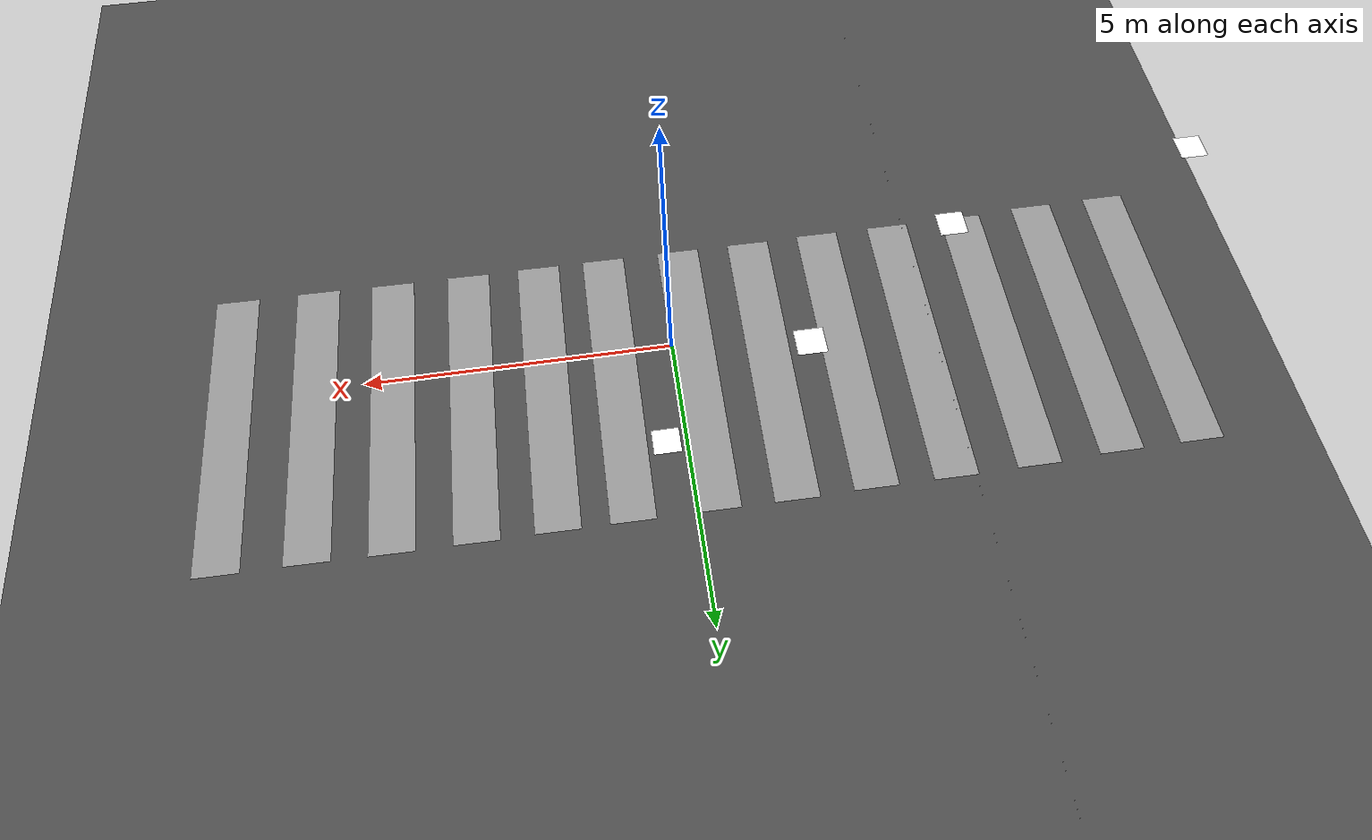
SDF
<sdf version="1.7">
 <world name="default">
  <scene><ambient>0.5 0.5 0.5 1</ambient><background>0.5 0.5 0.5 1</background><shadows>0</shadows></scene>
  <physics type="ode">
   <ode>
    <solver>
     <type>quick</type>
     <iters>10</iters>
     <sor>1.3</sor>
     <use_dynamic_moi_rescaling>0</use_dynamic_moi_rescaling>
    </solver>
    <constraints>
     <cfm>0</cfm>
     <erp>0.2</erp>
     <contact_max_correcting_vel>10</contact_max_correcting_vel>
     <contact_surface_layer>0.001</contact_surface_layer>
    </constraints>
   </ode>
   <real_time_update_rate>1000</real_time_update_rate>
   <max_step_size>0.001</max_step_size>
   <real_time_factor>1</real_time_factor>
  </physics>
  <light name="directional_light_2" type="directional">
   <pose>0 0 20 0 -0 0</pose>
   <diffuse>1 1 1 1</diffuse>
   <specular>1 1 1 1</specular>
   <attenuation><range>300</range></attenuation>
   <direction>-1 1 -1</direction>
   <cast_shadows>0</cast_shadows>
   <spot><inner_angle>0</inner_angle><outer_angle>0</outer_angle><falloff>0</falloff></spot>
  </light>
  <light name="directional_light_3" type="directional">
   <pose>0 0 20 0 -0 0</pose>
   <diffuse>1 1 1 1</diffuse>
   <specular>1 1 1 1</specular>
   <attenuation><range>300</range></attenuation>
   <direction>-1 -1 -1</direction>
   <cast_shadows>0</cast_shadows>
   <spot><inner_angle>0</inner_angle><outer_angle>0</outer_angle><falloff>0</falloff></spot>
  </light>
  <model name="plane1_model">
   <link name="body">
    <collision name="geom_1">
     <geometry><plane><normal>0 0 1</normal><size>1 1</size></plane></geometry>
     <surface>
      <friction><ode><mu>10</mu><mu2>10</mu2><fdir1>0 0 0</fdir1><slip1>0</slip1><slip2>0</slip2></ode></friction>
      <bounce><restitution_coefficient>0</restitution_coefficient><threshold>1e+06</threshold></bounce>
      <contact>
       <ode>
        <soft_cfm>0</soft_cfm>
        <soft_erp>0.2</soft_erp>
        <kp>1e+10</kp>
        <kd>1</kd>
        <max_vel>100</max_vel>
        <min_depth>0.0001</min_depth>
       </ode>
      </contact>
     </surface>
    </collision>
    <visual name="visual_1">
     <geometry><plane><normal>0 0 1</normal><size>1 1</size></plane></geometry>
     <material><script><uri>__default__</uri><name>__default__</name></script></material>
     <cast_shadows>0</cast_shadows>
    </visual>
   </link>
   <static>1</static>
  </model>
  <model name="tag36_11_00000">
   <static>1</static>
   <link name="tag">
    <visual name="visual">
     <geometry><box><size>0.4445 0.4445 1e-05</size></box></geometry>
     <material>
      <script>
       <uri>model://tag36_11_00000/materials/scripts</uri>
       <uri>model://tag36_11_00000/materials/textures</uri>
       <name>Tag36_11_00000/Tag</name>
      </script>
      <ambient>1 1 1 1</ambient>
      <diffuse>1 1 1 1</diffuse>
      <specular>0 0 0 1</specular>
      <emissive>1 1 1 0</emissive>
      <shader type="vertex"><normal_map>__default__</normal_map></shader>
     </material>
    </visual>
   </link>
   <link name="tag_pad">
    <pose relative_to="tag">0 0 -0.0003 0 -0 0</pose>
    <visual name="visual">
     <geometry><box><size>0.4445 0.4445 1e-05</size></box></geometry>
     <material>
      <lighting>1</lighting>
      <script><uri>file://media/materials/scripts/gazebo.material</uri><name>Gazebo/White</name></script>
      <ambient>0.3 0.3 0.3 1</ambient>
      <diffuse>0.7 0.7 0.7 1</diffuse>
      <specular>0.01 0.01 0.01 1</specular>
      <emissive>1 1 1 0</emissive>
      <shader type="vertex"><normal_map>__default__</normal_map></shader>
     </material>
    </visual>
   </link>
   <joint name="tag_JOINT_marker_pad" type="revolute">
    <parent>tag</parent>
    <child>tag_pad</child>
    <axis>
     <xyz>0 0 1</xyz>
     <limit><upper>0</upper><lower>0</lower></limit>
     <dynamics><spring_reference>0</spring_reference><spring_stiffness>0</spring_stiffness></dynamics>
    </axis>
   </joint>
   <static>1</static>
   <pose>-8.80364 -1.3137 1.9336 0 -0 0</pose>
  </model>
  <model name="tag36_11_00001">
   <static>1</static>
   <link name="tag">
    <visual name="visual">
     <geometry><box><size>0.4445 0.4445 1e-05</size></box></geometry>
     <material>
      <script>
       <uri>model://tag36_11_00001/materials/scripts</uri>
       <uri>model://tag36_11_00001/materials/textures</uri>
       <name>Tag36_11_00001/Tag</name>
      </script>
      <ambient>1 1 1 1</ambient>
      <diffuse>1 1 1 1</diffuse>
      <specular>0 0 0 1</specular>
      <emissive>1 1 1 0</emissive>
      <shader type="vertex"><normal_map>__default__</normal_map></shader>
     </material>
    </visual>
   </link>
   <link name="tag_pad">
    <pose relative_to="tag">0 0 -0.0003 0 -0 0</pose>
    <visual name="visual">
     <geometry><box><size>0.4445 0.4445 1e-05</size></box></geometry>
     <material>
      <lighting>1</lighting>
      <script><uri>file://media/materials/scripts/gazebo.material</uri><name>Gazebo/White</name></script>
      <ambient>0.3 0.3 0.3 1</ambient>
      <diffuse>0.7 0.7 0.7 1</diffuse>
      <specular>0.01 0.01 0.01 1</specular>
      <emissive>1 1 1 0</emissive>
      <shader type="vertex"><normal_map>__default__</normal_map></shader>
     </material>
    </visual>
   </link>
   <joint name="tag_JOINT_marker_pad" type="revolute">
    <parent>tag</parent>
    <child>tag_pad</child>
    <axis>
     <xyz>0 0 1</xyz>
     <limit><upper>0</upper><lower>0</lower></limit>
     <dynamics><spring_reference>0</spring_reference><spring_stiffness>0</spring_stiffness></dynamics>
    </axis>
   </joint>
   <static>1</static>
   <pose>-4.639 -0.565701 1.6192 0 -0 0</pose>
  </model>
  <gravity>0 0 -9.81</gravity>
  <magnetic_field>6e-06 2.3e-05 -4.2e-05</magnetic_field>
  <atmosphere type="adiabatic"/>
  <spherical_coordinates>
   <surface_model>EARTH_WGS84</surface_model>
   <latitude_deg>0</latitude_deg>
   <longitude_deg>0</longitude_deg>
   <elevation>0</elevation>
   <heading_deg>0</heading_deg>
  </spherical_coordinates>
  <model name="asphalt_plane">
   <static>1</static>
   <link name="link">
    <collision name="collision"><geometry><box><size>20 20 0.1</size></box></geometry></collision>
    <visual name="visual">
     <cast_shadows>0</cast_shadows>
     <geometry><box><size>20 20 0.1</size></box></geometry>
     <material>
      <script>
       <uri>model://asphalt_plane/materials/scripts</uri>
       <uri>model://asphalt_plane/materials/textures</uri>
       <name>vrc/asphalt</name>
      </script>
     </material>
    </visual>
   </link>
   <pose>0.192163 0.017934 0 0 -0 0</pose>
  </model>
  <model name="rectangle">
   <static>1</static>
   <link name="link">
    <inertial>
     <mass>1</mass>
     <inertia>
      <ixx>0.166667</ixx>
      <ixy>0</ixy>
      <ixz>0</ixz>
      <iyy>0.166667</iyy>
      <iyz>0</iyz>
      <izz>0.166667</izz>
     </inertia>
    </inertial>
    <visual name="visual">
     <geometry><box><size>0 8525.98 0.001</size></box></geometry>
     <material>
      <script><name>Gazebo/Grey</name><uri>file://media/materials/scripts/gazebo.material</uri></script>
      <shader type="pixel"><normal_map>__default__</normal_map></shader>
      <ambient>0.3 0.3 0.3 1</ambient>
      <diffuse>0.7 0.7 0.7 1</diffuse>
      <specular>0.01 0.01 0.01 1</specular>
      <emissive>0 0 0 1</emissive>
     </material>
    </visual>
   </link>
   <static>0</static>
   <pose>-4.18019 -3.67858 0.5 0 -0 0</pose>
  </model>
  <light name="user_point_light_0" type="point">
   <pose>-69.7412 -12.6527 1 0 -0 0</pose>
   <diffuse>0.5 0.5 0.5 1</diffuse>
   <specular>0.1 0.1 0.1 1</specular>
   <attenuation>
    <range>20</range>
    <constant>0.5</constant>
    <linear>0.01</linear>
    <quadratic>0.001</quadratic>
   </attenuation>
   <cast_shadows>0</cast_shadows>
   <direction>0 0 -1</direction>
   <spot><inner_angle>0</inner_angle><outer_angle>0</outer_angle><falloff>0</falloff></spot>
  </light>
  <light name="user_spot_light_0" type="spot">
   <pose>-64.3214 -14.4523 1 0 -0 0</pose>
   <diffuse>0.5 0.5 0.5 1</diffuse>
   <specular>0.1 0.1 0.1 1</specular>
   <direction>0 0 -1</direction>
   <attenuation>
    <range>20</range>
    <constant>0.5</constant>
    <linear>0.01</linear>
    <quadratic>0.001</quadratic>
   </attenuation>
   <cast_shadows>0</cast_shadows>
   <spot><inner_angle>0.6</inner_angle><outer_angle>1</outer_angle><falloff>1</falloff></spot>
  </light>
  <model name="rectangle_clone">
   <static>1</static>
   <link name="link">
    <inertial>
     <mass>1</mass>
     <inertia>
      <ixx>0.166667</ixx>
      <ixy>0</ixy>
      <ixz>0</ixz>
      <iyy>0.166667</iyy>
      <iyz>0</iyz>
      <izz>0.166667</izz>
     </inertia>
    </inertial>
    <visual name="visual">
     <geometry><box><size>5.09682 0.706021 0.001</size></box></geometry>
     <material>
      <script><name>Gazebo/Grey</name><uri>file://media/materials/scripts/gazebo.material</uri></script>
      <shader type="pixel"><normal_map>__default__</normal_map></shader>
      <ambient>0.3 0.3 0.3 1</ambient>
      <diffuse>0.7 0.7 0.7 1</diffuse>
      <specular>0.01 0.01 0.01 1</specular>
      <emissive>0 0 0 1</emissive>
     </material>
    </visual>
   </link>
   <static>0</static>
   <pose>-7.97197 0.538637 0.07926 1.6e-05 -5e-06 1.56913</pose>
  </model>
  <model name="rectangle_clone_0">
   <static>1</static>
   <link name="link">
    <inertial>
     <mass>1</mass>
     <inertia>
      <ixx>0.166667</ixx>
      <ixy>0</ixy>
      <ixz>0</ixz>
      <iyy>0.166667</iyy>
      <iyz>0</iyz>
      <izz>0.166667</izz>
     </inertia>
    </inertial>
    <visual name="visual">
     <geometry><box><size>5.09682 0.706021 0.001</size></box></geometry>
     <material>
      <script><name>Gazebo/Grey</name><uri>file://media/materials/scripts/gazebo.material</uri></script>
      <shader type="pixel"><normal_map>__default__</normal_map></shader>
      <ambient>0.3 0.3 0.3 1</ambient>
      <diffuse>0.7 0.7 0.7 1</diffuse>
      <specular>0.01 0.01 0.01 1</specular>
      <emissive>0 0 0 1</emissive>
     </material>
    </visual>
   </link>
   <static>0</static>
   <pose>-6.67217 0.537914 0.062123 2.6e-05 6e-06 1.5716</pose>
  </model>
  <model name="rectangle_clone_1">
   <static>1</static>
   <link name="link">
    <inertial>
     <mass>1</mass>
     <inertia>
      <ixx>0.166667</ixx>
      <ixy>0</ixy>
      <ixz>0</ixz>
      <iyy>0.166667</iyy>
      <iyz>0</iyz>
      <izz>0.166667</izz>
     </inertia>
    </inertial>
    <visual name="visual">
     <geometry><box><size>5.09682 0.706021 0.001</size></box></geometry>
     <material>
      <script><name>Gazebo/Grey</name><uri>file://media/materials/scripts/gazebo.material</uri></script>
      <shader type="pixel"><normal_map>__default__</normal_map></shader>
      <ambient>0.3 0.3 0.3 1</ambient>
      <diffuse>0.7 0.7 0.7 1</diffuse>
      <specular>0.01 0.01 0.01 1</specular>
      <emissive>0 0 0 1</emissive>
     </material>
    </visual>
   </link>
   <static>0</static>
   <pose>-5.35765 0.580215 0.051847 2.7e-05 4e-06 1.5647</pose>
  </model>
  <model name="rectangle_clone_2">
   <static>1</static>
   <link name="link">
    <inertial>
     <mass>1</mass>
     <inertia>
      <ixx>0.166667</ixx>
      <ixy>0</ixy>
      <ixz>0</ixz>
      <iyy>0.166667</iyy>
      <iyz>0</iyz>
      <izz>0.166667</izz>
     </inertia>
    </inertial>
    <visual name="visual">
     <geometry><box><size>5.09682 0.706021 0.001</size></box></geometry>
     <material>
      <script><name>Gazebo/Grey</name><uri>file://media/materials/scripts/gazebo.material</uri></script>
      <shader type="pixel"><normal_map>__default__</normal_map></shader>
      <ambient>0.3 0.3 0.3 1</ambient>
      <diffuse>0.7 0.7 0.7 1</diffuse>
      <specular>0.01 0.01 0.01 1</specular>
      <emissive>0 0 0 1</emissive>
     </material>
    </visual>
   </link>
   <static>0</static>
   <pose>-4.03437 0.595212 0.055051 1.6e-05 -6e-06 1.56291</pose>
  </model>
  <model name="rectangle_clone_3">
   <static>1</static>
   <link name="link">
    <inertial>
     <mass>1</mass>
     <inertia>
      <ixx>0.166667</ixx>
      <ixy>0</ixy>
      <ixz>0</ixz>
      <iyy>0.166667</iyy>
      <iyz>0</iyz>
      <izz>0.166667</izz>
     </inertia>
    </inertial>
    <visual name="visual">
     <geometry><box><size>5.09682 0.706021 0.001</size></box></geometry>
     <material>
      <script><name>Gazebo/Grey</name><uri>file://media/materials/scripts/gazebo.material</uri></script>
      <shader type="pixel"><normal_map>__default__</normal_map></shader>
      <ambient>0.3 0.3 0.3 1</ambient>
      <diffuse>0.7 0.7 0.7 1</diffuse>
      <specular>0.01 0.01 0.01 1</specular>
      <emissive>0 0 0 1</emissive>
     </material>
    </visual>
   </link>
   <static>0</static>
   <pose>-2.77895 0.590015 0.051096 1.6e-05 -5e-06 1.56297</pose>
  </model>
  <model name="rectangle_clone_4">
   <static>1</static>
   <link name="link">
    <inertial>
     <mass>1</mass>
     <inertia>
      <ixx>0.166667</ixx>
      <ixy>0</ixy>
      <ixz>0</ixz>
      <iyy>0.166667</iyy>
      <iyz>0</iyz>
      <izz>0.166667</izz>
     </inertia>
    </inertial>
    <visual name="visual">
     <geometry><box><size>5.09682 0.706021 0.001</size></box></geometry>
     <material>
      <script><name>Gazebo/Grey</name><uri>file://media/materials/scripts/gazebo.material</uri></script>
      <shader type="pixel"><normal_map>__default__</normal_map></shader>
      <ambient>0.3 0.3 0.3 1</ambient>
      <diffuse>0.7 0.7 0.7 1</diffuse>
      <specular>0.01 0.01 0.01 1</specular>
      <emissive>0 0 0 1</emissive>
     </material>
    </visual>
   </link>
   <static>0</static>
   <pose>-1.54956 0.611282 0.055024 1.6e-05 6e-06 1.56031</pose>
  </model>
  <model name="rectangle_clone_5">
   <static>1</static>
   <link name="link">
    <inertial>
     <mass>1</mass>
     <inertia>
      <ixx>0.166667</ixx>
      <ixy>0</ixy>
      <ixz>0</ixz>
      <iyy>0.166667</iyy>
      <iyz>0</iyz>
      <izz>0.166667</izz>
     </inertia>
    </inertial>
    <visual name="visual">
     <geometry><box><size>5.09682 0.706021 0.001</size></box></geometry>
     <material>
      <script><name>Gazebo/Grey</name><uri>file://media/materials/scripts/gazebo.material</uri></script>
      <shader type="pixel"><normal_map>__default__</normal_map></shader>
      <ambient>0.3 0.3 0.3 1</ambient>
      <diffuse>0.7 0.7 0.7 1</diffuse>
      <specular>0.01 0.01 0.01 1</specular>
      <emissive>0 0 0 1</emissive>
     </material>
    </visual>
   </link>
   <static>0</static>
   <pose>-0.332968 0.603175 0.054169 1.6e-05 5e-06 1.56216</pose>
  </model>
  <model name="rectangle_clone_6">
   <static>1</static>
   <link name="link">
    <inertial>
     <mass>1</mass>
     <inertia>
      <ixx>0.166667</ixx>
      <ixy>0</ixy>
      <ixz>0</ixz>
      <iyy>0.166667</iyy>
      <iyz>0</iyz>
      <izz>0.166667</izz>
     </inertia>
    </inertial>
    <visual name="visual">
     <geometry><box><size>5.09682 0.706021 0.001</size></box></geometry>
     <material>
      <script><name>Gazebo/Grey</name><uri>file://media/materials/scripts/gazebo.material</uri></script>
      <shader type="pixel"><normal_map>__default__</normal_map></shader>
      <ambient>0.3 0.3 0.3 1</ambient>
      <diffuse>0.7 0.7 0.7 1</diffuse>
      <specular>0.01 0.01 0.01 1</specular>
      <emissive>0 0 0 1</emissive>
     </material>
    </visual>
   </link>
   <static>0</static>
   <pose>0.96273 0.602298 0.051548 1.6e-05 5e-06 1.56126</pose>
  </model>
  <model name="rectangle_clone_7">
   <static>1</static>
   <link name="link">
    <inertial>
     <mass>1</mass>
     <inertia>
      <ixx>0.166667</ixx>
      <ixy>0</ixy>
      <ixz>0</ixz>
      <iyy>0.166667</iyy>
      <iyz>0</iyz>
      <izz>0.166667</izz>
     </inertia>
    </inertial>
    <visual name="visual">
     <geometry><box><size>5.09682 0.706021 0.001</size></box></geometry>
     <material>
      <script><name>Gazebo/Grey</name><uri>file://media/materials/scripts/gazebo.material</uri></script>
      <shader type="pixel"><normal_map>__default__</normal_map></shader>
      <ambient>0.3 0.3 0.3 1</ambient>
      <diffuse>0.7 0.7 0.7 1</diffuse>
      <specular>0.01 0.01 0.01 1</specular>
      <emissive>0 0 0 1</emissive>
     </material>
    </visual>
   </link>
   <static>0</static>
   <pose>2.0877 0.599682 0.051361 1.6e-05 6e-06 1.55671</pose>
  </model>
  <model name="rectangle_clone_8">
   <static>1</static>
   <link name="link">
    <inertial>
     <mass>1</mass>
     <inertia>
      <ixx>0.166667</ixx>
      <ixy>0</ixy>
      <ixz>0</ixz>
      <iyy>0.166667</iyy>
      <iyz>0</iyz>
      <izz>0.166667</izz>
     </inertia>
    </inertial>
    <visual name="visual">
     <geometry><box><size>5.09682 0.706021 0.001</size></box></geometry>
     <material>
      <script><name>Gazebo/Grey</name><uri>file://media/materials/scripts/gazebo.material</uri></script>
      <shader type="pixel"><normal_map>__default__</normal_map></shader>
      <ambient>0.3 0.3 0.3 1</ambient>
      <diffuse>0.7 0.7 0.7 1</diffuse>
      <specular>0.01 0.01 0.01 1</specular>
      <emissive>0 0 0 1</emissive>
     </material>
    </visual>
   </link>
   <static>0</static>
   <pose>3.291 0.604758 0.056032 1.6e-05 6e-06 1.55248</pose>
  </model>
  <model name="rectangle_clone_9">
   <static>1</static>
   <link name="link">
    <inertial>
     <mass>1</mass>
     <inertia>
      <ixx>0.166667</ixx>
      <ixy>0</ixy>
      <ixz>0</ixz>
      <iyy>0.166667</iyy>
      <iyz>0</iyz>
      <izz>0.166667</izz>
     </inertia>
    </inertial>
    <visual name="visual">
     <geometry><box><size>5.09682 0.706021 0.001</size></box></geometry>
     <material>
      <script><name>Gazebo/Grey</name><uri>file://media/materials/scripts/gazebo.material</uri></script>
      <shader type="pixel"><normal_map>__default__</normal_map></shader>
      <ambient>0.3 0.3 0.3 1</ambient>
      <diffuse>0.7 0.7 0.7 1</diffuse>
      <specular>0.01 0.01 0.01 1</specular>
      <emissive>0 0 0 1</emissive>
     </material>
    </visual>
   </link>
   <static>0</static>
   <pose>4.5514 0.595169 0.053351 1.6e-05 6e-06 1.55499</pose>
  </model>
  <model name="rectangle_clone_10">
   <static>1</static>
   <link name="link">
    <inertial>
     <mass>1</mass>
     <inertia>
      <ixx>0.166667</ixx>
      <ixy>0</ixy>
      <ixz>0</ixz>
      <iyy>0.166667</iyy>
      <iyz>0</iyz>
      <izz>0.166667</izz>
     </inertia>
    </inertial>
    <visual name="visual">
     <geometry><box><size>5.09682 0.706021 0.001</size></box></geometry>
     <material>
      <script><name>Gazebo/Grey</name><uri>file://media/materials/scripts/gazebo.material</uri></script>
      <shader type="pixel"><normal_map>__default__</normal_map></shader>
      <ambient>0.3 0.3 0.3 1</ambient>
      <diffuse>0.7 0.7 0.7 1</diffuse>
      <specular>0.01 0.01 0.01 1</specular>
      <emissive>0 0 0 1</emissive>
     </material>
    </visual>
   </link>
   <static>0</static>
   <pose>5.79482 0.574222 0.056323 1.6e-05 6e-06 1.55465</pose>
  </model>
  <model name="rectangle_clone_11">
   <static>1</static>
   <link name="link">
    <inertial>
     <mass>1</mass>
     <inertia>
      <ixx>0.166667</ixx>
      <ixy>0</ixy>
      <ixz>0</ixz>
      <iyy>0.166667</iyy>
      <iyz>0</iyz>
      <izz>0.166667</izz>
     </inertia>
    </inertial>
    <visual name="visual">
     <geometry><box><size>5.09682 0.706021 0.001</size></box></geometry>
     <material>
      <script><name>Gazebo/Grey</name><uri>file://media/materials/scripts/gazebo.material</uri></script>
      <shader type="pixel"><normal_map>__default__</normal_map></shader>
      <ambient>0.3 0.3 0.3 1</ambient>
      <diffuse>0.7 0.7 0.7 1</diffuse>
      <specular>0.01 0.01 0.01 1</specular>
      <emissive>0 0 0 1</emissive>
     </material>
    </visual>
   </link>
   <static>0</static>
   <pose>7.12412 0.564486 0.052495 1.6e-05 6e-06 1.55724</pose>
  </model>
  <model name="tag36_11_00002">
   <link name="tag">
    <visual name="visual">
     <geometry><box><size>0.4445 0.4445 1e-05</size></box></geometry>
     <material>
      <script>
       <uri>model://tag36_11_00002/materials/scripts</uri>
       <uri>model://tag36_11_00002/materials/textures</uri>
       <name>Tag36_11_00002/Tag</name>
      </script>
      <ambient>1 1 1 1</ambient>
      <diffuse>1 1 1 1</diffuse>
      <specular>0 0 0 1</specular>
      <emissive>1 1 1 0</emissive>
      <shader type="vertex"><normal_map>__default__</normal_map></shader>
     </material>
    </visual>
   </link>
   <link name="tag_pad">
    <pose relative_to="tag">0 0 -0.0003 0 -0 0</pose>
    <visual name="visual">
     <geometry><box><size>0.4445 0.4445 1e-05</size></box></geometry>
     <material>
      <lighting>1</lighting>
      <script><uri>file://media/materials/scripts/gazebo.material</uri><name>Gazebo/White</name></script>
      <ambient>0.3 0.3 0.3 1</ambient>
      <diffuse>0.7 0.7 0.7 1</diffuse>
      <specular>0.01 0.01 0.01 1</specular>
      <emissive>1 1 1 0</emissive>
      <shader type="vertex"><normal_map>__default__</normal_map></shader>
     </material>
    </visual>
   </link>
   <joint name="tag_JOINT_marker_pad" type="revolute">
    <parent>tag</parent>
    <child>tag_pad</child>
    <axis>
     <xyz>0 0 1</xyz>
     <limit><upper>0</upper><lower>0</lower></limit>
     <dynamics><spring_reference>0</spring_reference><spring_stiffness>0</spring_stiffness></dynamics>
    </axis>
   </joint>
   <static>1</static>
   <pose>-1.90186 1.62621 1.99194 0 -0 0</pose>
  </model>
  <model name="tag36_11_00003">
   <link name="tag">
    <visual name="visual">
     <geometry><box><size>0.4445 0.4445 1e-05</size></box></geometry>
     <material>
      <script>
       <uri>model://tag36_11_00003/materials/scripts</uri>
       <uri>model://tag36_11_00003/materials/textures</uri>
       <name>Tag36_11_00003/Tag</name>
      </script>
      <ambient>1 1 1 1</ambient>
      <diffuse>1 1 1 1</diffuse>
      <specular>0 0 0 1</specular>
      <emissive>1 1 1 0</emissive>
      <shader type="vertex"><normal_map>__default__</normal_map></shader>
     </material>
    </visual>
   </link>
   <link name="tag_pad">
    <pose relative_to="tag">0 0 -0.0003 0 -0 0</pose>
    <visual name="visual">
     <geometry><box><size>0.4445 0.4445 1e-05</size></box></geometry>
     <material>
      <lighting>1</lighting>
      <script><uri>file://media/materials/scripts/gazebo.material</uri><name>Gazebo/White</name></script>
      <ambient>0.3 0.3 0.3 1</ambient>
      <diffuse>0.7 0.7 0.7 1</diffuse>
      <specular>0.01 0.01 0.01 1</specular>
      <emissive>1 1 1 0</emissive>
      <shader type="vertex"><normal_map>__default__</normal_map></shader>
     </material>
    </visual>
   </link>
   <joint name="tag_JOINT_marker_pad" type="revolute">
    <parent>tag</parent>
    <child>tag_pad</child>
    <axis>
     <xyz>0 0 1</xyz>
     <limit><upper>0</upper><lower>0</lower></limit>
     <dynamics><spring_reference>0</spring_reference><spring_stiffness>0</spring_stiffness></dynamics>
    </axis>
   </joint>
   <static>1</static>
   <pose>0.319037 1.8237 0.051675 0 -0 0</pose>
  </model>
 </world>
</sdf>
